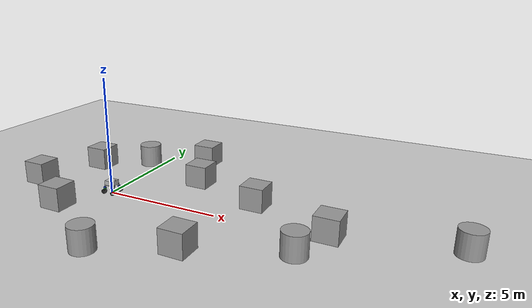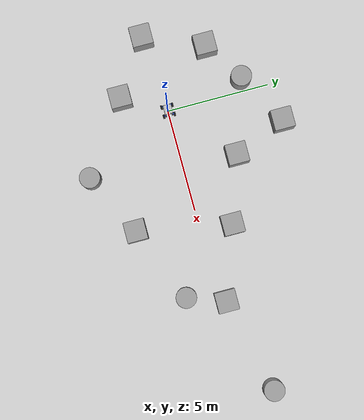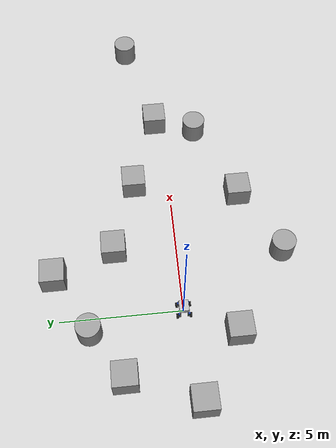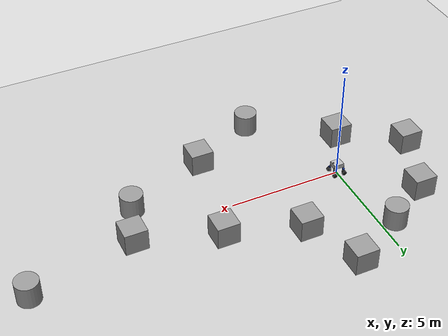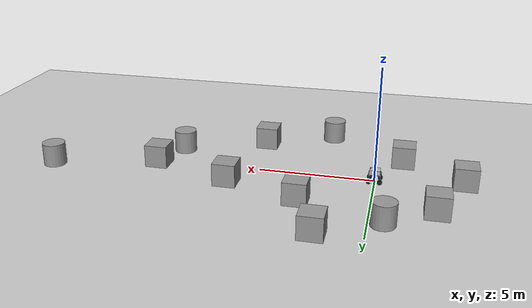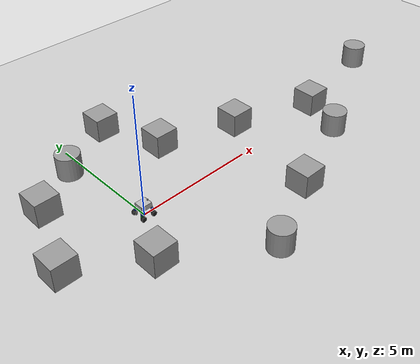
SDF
<sdf version="1.6">
 <world name="default">
  <light name="sun" type="directional">
   <pose>0 0 10 0 -0 0</pose>
   <diffuse>0.8 0.8 0.8 1</diffuse>
   <specular>0.2 0.2 0.2 1</specular>
   <attenuation>
    <range>1000</range>
    <constant>0.9</constant>
    <linear>0.01</linear>
    <quadratic>0.001</quadratic>
   </attenuation>
   <direction>-0.5 0.1 -0.9</direction>
  </light>
  <model name="ground_plane">
   <static>1</static>
   <link name="link">
    <collision name="collision">
     <geometry><plane><normal>0 0 1</normal><size>100 100</size></plane></geometry>
     <surface>
      <contact><collide_bitmask>65535</collide_bitmask></contact>
      <friction><ode><mu>100</mu><mu2>50</mu2></ode></friction>
     </surface>
    </collision>
    <visual name="visual">
     <cast_shadows>0</cast_shadows>
     <geometry><plane><normal>0 0 1</normal><size>100 100</size></plane></geometry>
     <material>
      <script><uri>file://media/materials/scripts/gazebo.material</uri><name>Gazebo/Grey</name></script>
     </material>
    </visual>
   </link>
  </model>
  <gravity>0 0 -9.8</gravity>
  <magnetic_field>6e-06 2.3e-05 -4.2e-05</magnetic_field>
  <atmosphere type="adiabatic"/>
  <physics name="default_physics" default="0" type="ode">
   <max_step_size>0.001</max_step_size>
   <real_time_factor>1</real_time_factor>
   <real_time_update_rate>1000</real_time_update_rate>
  </physics>
  <scene><ambient>0.4 0.4 0.4 1</ambient><background>0.7 0.7 0.7 1</background><shadows>1</shadows></scene>
  <audio><device>default</device></audio>
  <spherical_coordinates>
   <surface_model>EARTH_WGS84</surface_model>
   <latitude_deg>0</latitude_deg>
   <longitude_deg>0</longitude_deg>
   <elevation>0</elevation>
   <heading_deg>0</heading_deg>
  </spherical_coordinates>
  <model name="PF1">
   <link name="base_link">
    <inertial>
     <pose>0 -0 -0.108125 0 -0 0</pose>
     <mass>32</mass>
     <inertia>
      <ixx>14.1081</ixx>
      <ixy>0</ixy>
      <ixz>-2.77556e-17</ixz>
      <iyy>14.3162</iyy>
      <iyz>1.20043e-17</iyz>
      <izz>14.0615</izz>
     </inertia>
    </inertial>
    <collision name="base_link_collision"><geometry><box><size>0.45 0.39 0.2</size></box></geometry></collision>
    <collision name="base_link_fixed_joint_lump__frame1_bl_collision_1">
     <pose>-0.135 0.14 -0.1 0 -0 0</pose>
     <geometry><box><size>0.27 0.02 0.09</size></box></geometry>
    </collision>
    <collision name="base_link_fixed_joint_lump__frame2_bl_collision_2">
     <pose>-0.23 0.16 -0.145 0 -0 0</pose>
     <geometry><box><size>0.08 0.02 0.05</size></box></geometry>
    </collision>
    <collision name="base_link_fixed_joint_lump__gear_bl_collision_3">
     <pose>-0.23 0.195 -0.205 0 -0 0</pose>
     <geometry><box><size>0.075 0.09 0.07</size></box></geometry>
    </collision>
    <collision name="base_link_fixed_joint_lump__frame3_bl_collision_4">
     <pose>-0.23 0.195 -0.285 0 -0 0</pose>
     <geometry><box><size>0.075 0.09 0.09</size></box></geometry>
     <surface><friction><ode><mu>2500</mu><mu2>2500</mu2></ode></friction></surface>
    </collision>
    <collision name="base_link_fixed_joint_lump__motor_bl_collision_5">
     <pose>-0.23 0.175 -0.375 0 -0 0</pose>
     <geometry><box><size>0.075 0.09 0.09</size></box></geometry>
    </collision>
    <collision name="base_link_fixed_joint_lump__frame1_br_collision_6">
     <pose>-0.135 -0.14 -0.1 0 -0 0</pose>
     <geometry><box><size>0.27 0.02 0.09</size></box></geometry>
    </collision>
    <collision name="base_link_fixed_joint_lump__frame2_br_collision_7">
     <pose>-0.23 -0.16 -0.145 0 -0 0</pose>
     <geometry><box><size>0.08 0.02 0.05</size></box></geometry>
    </collision>
    <collision name="base_link_fixed_joint_lump__gear_br_collision_8">
     <pose>-0.23 -0.195 -0.205 0 -0 0</pose>
     <geometry><box><size>0.075 0.09 0.07</size></box></geometry>
    </collision>
    <collision name="base_link_fixed_joint_lump__frame3_br_collision_9">
     <pose>-0.23 -0.195 -0.285 0 -0 0</pose>
     <geometry><box><size>0.075 0.09 0.09</size></box></geometry>
     <surface><friction><ode><mu>2500</mu><mu2>2500</mu2></ode></friction></surface>
    </collision>
    <collision name="base_link_fixed_joint_lump__motor_br_collision_10">
     <pose>-0.23 -0.175 -0.375 0 -0 0</pose>
     <geometry><box><size>0.075 0.09 0.09</size></box></geometry>
    </collision>
    <collision name="base_link_fixed_joint_lump__frame1_fl_collision_11">
     <pose>0.135 0.14 -0.1 0 -0 0</pose>
     <geometry><box><size>0.27 0.02 0.09</size></box></geometry>
    </collision>
    <collision name="base_link_fixed_joint_lump__frame2_fl_collision_12">
     <pose>0.23 0.16 -0.145 0 -0 0</pose>
     <geometry><box><size>0.08 0.02 0.05</size></box></geometry>
    </collision>
    <collision name="base_link_fixed_joint_lump__gear_fl_collision_13">
     <pose>0.23 0.195 -0.205 0 -0 0</pose>
     <geometry><box><size>0.075 0.09 0.07</size></box></geometry>
    </collision>
    <collision name="base_link_fixed_joint_lump__frame3_fl_collision_14">
     <pose>0.23 0.195 -0.285 0 -0 0</pose>
     <geometry><box><size>0.075 0.09 0.09</size></box></geometry>
     <surface><friction><ode><mu>2500</mu><mu2>2500</mu2></ode></friction></surface>
    </collision>
    <collision name="base_link_fixed_joint_lump__motor_fl_collision_15">
     <pose>0.23 0.175 -0.375 0 -0 0</pose>
     <geometry><box><size>0.075 0.09 0.09</size></box></geometry>
    </collision>
    <collision name="base_link_fixed_joint_lump__frame1_fr_collision_16">
     <pose>0.135 -0.14 -0.1 0 -0 0</pose>
     <geometry><box><size>0.27 0.02 0.09</size></box></geometry>
    </collision>
    <collision name="base_link_fixed_joint_lump__frame2_fr_collision_17">
     <pose>0.23 -0.16 -0.145 0 -0 0</pose>
     <geometry><box><size>0.08 0.02 0.05</size></box></geometry>
    </collision>
    <collision name="base_link_fixed_joint_lump__gear_fr_collision_18">
     <pose>0.23 -0.195 -0.205 0 -0 0</pose>
     <geometry><box><size>0.075 0.09 0.07</size></box></geometry>
    </collision>
    <collision name="base_link_fixed_joint_lump__frame3_fr_collision_19">
     <pose>0.23 -0.195 -0.285 0 -0 0</pose>
     <geometry><box><size>0.075 0.09 0.09</size></box></geometry>
     <surface><friction><ode><mu>2500</mu><mu2>2500</mu2></ode></friction></surface>
    </collision>
    <collision name="base_link_fixed_joint_lump__motor_fr_collision_20">
     <pose>0.23 -0.175 -0.375 0 -0 0</pose>
     <geometry><box><size>0.075 0.09 0.09</size></box></geometry>
    </collision>
    <collision name="base_link_fixed_joint_lump__front_lidar_collision_21">
     <pose>0.19 0 0.125 0 -0 0</pose>
     <geometry><cylinder><length>0.05</length><radius>0.025</radius></cylinder></geometry>
    </collision>
    <collision name="base_link_fixed_joint_lump__imu_link_collision_22">
     <geometry><cylinder><length>0.01</length><radius>0.005</radius></cylinder></geometry>
    </collision>
    <visual name="base_link_visual"><geometry><box><size>0.45 0.39 0.2</size></box></geometry></visual>
    <visual name="base_link_fixed_joint_lump__frame1_bl_visual_1">
     <pose>-0.135 0.14 -0.1 0 -0 0</pose>
     <geometry><box><size>0.27 0.02 0.09</size></box></geometry>
     <material>
      <script><name>Gazebo/Grey</name><uri>file://media/materials/scripts/gazebo.material</uri></script>
     </material>
    </visual>
    <visual name="base_link_fixed_joint_lump__frame2_bl_visual_2">
     <pose>-0.23 0.16 -0.145 0 -0 0</pose>
     <geometry><box><size>0.08 0.02 0.05</size></box></geometry>
     <material>
      <script><name>Gazebo/Grey</name><uri>file://media/materials/scripts/gazebo.material</uri></script>
     </material>
    </visual>
    <visual name="base_link_fixed_joint_lump__gear_bl_visual_3">
     <pose>-0.23 0.195 -0.205 0 -0 0</pose>
     <geometry><box><size>0.075 0.09 0.07</size></box></geometry>
     <material>
      <script><name>Gazebo/Blue</name><uri>file://media/materials/scripts/gazebo.material</uri></script>
     </material>
    </visual>
    <visual name="base_link_fixed_joint_lump__frame3_bl_visual_4">
     <pose>-0.23 0.195 -0.285 0 -0 0</pose>
     <geometry><box><size>0.075 0.09 0.09</size></box></geometry>
     <material>
      <script><name>Gazebo/Grey</name><uri>file://media/materials/scripts/gazebo.material</uri></script>
     </material>
    </visual>
    <visual name="base_link_fixed_joint_lump__motor_bl_visual_5">
     <pose>-0.23 0.175 -0.375 0 -0 0</pose>
     <geometry><box><size>0.075 0.09 0.09</size></box></geometry>
     <material>
      <script><name>Gazebo/Grey</name><uri>file://media/materials/scripts/gazebo.material</uri></script>
     </material>
    </visual>
    <visual name="base_link_fixed_joint_lump__frame1_br_visual_6">
     <pose>-0.135 -0.14 -0.1 0 -0 0</pose>
     <geometry><box><size>0.27 0.02 0.09</size></box></geometry>
     <material>
      <script><name>Gazebo/Grey</name><uri>file://media/materials/scripts/gazebo.material</uri></script>
     </material>
    </visual>
    <visual name="base_link_fixed_joint_lump__frame2_br_visual_7">
     <pose>-0.23 -0.16 -0.145 0 -0 0</pose>
     <geometry><box><size>0.08 0.02 0.05</size></box></geometry>
     <material>
      <script><name>Gazebo/Grey</name><uri>file://media/materials/scripts/gazebo.material</uri></script>
     </material>
    </visual>
    <visual name="base_link_fixed_joint_lump__gear_br_visual_8">
     <pose>-0.23 -0.195 -0.205 0 -0 0</pose>
     <geometry><box><size>0.075 0.09 0.07</size></box></geometry>
     <material>
      <script><name>Gazebo/Blue</name><uri>file://media/materials/scripts/gazebo.material</uri></script>
     </material>
    </visual>
    <visual name="base_link_fixed_joint_lump__frame3_br_visual_9">
     <pose>-0.23 -0.195 -0.285 0 -0 0</pose>
     <geometry><box><size>0.075 0.09 0.09</size></box></geometry>
     <material>
      <script><name>Gazebo/Green</name><uri>file://media/materials/scripts/gazebo.material</uri></script>
     </material>
    </visual>
    <visual name="base_link_fixed_joint_lump__motor_br_visual_10">
     <pose>-0.23 -0.175 -0.375 0 -0 0</pose>
     <geometry><box><size>0.075 0.09 0.09</size></box></geometry>
     <material>
      <script><name>Gazebo/Grey</name><uri>file://media/materials/scripts/gazebo.material</uri></script>
     </material>
    </visual>
    <visual name="base_link_fixed_joint_lump__frame1_fl_visual_11">
     <pose>0.135 0.14 -0.1 0 -0 0</pose>
     <geometry><box><size>0.27 0.02 0.09</size></box></geometry>
     <material>
      <script><name>Gazebo/Grey</name><uri>file://media/materials/scripts/gazebo.material</uri></script>
     </material>
    </visual>
    <visual name="base_link_fixed_joint_lump__frame2_fl_visual_12">
     <pose>0.23 0.16 -0.145 0 -0 0</pose>
     <geometry><box><size>0.08 0.02 0.05</size></box></geometry>
     <material>
      <script><name>Gazebo/Grey</name><uri>file://media/materials/scripts/gazebo.material</uri></script>
     </material>
    </visual>
    <visual name="base_link_fixed_joint_lump__gear_fl_visual_13">
     <pose>0.23 0.195 -0.205 0 -0 0</pose>
     <geometry><box><size>0.075 0.09 0.07</size></box></geometry>
     <material>
      <script><name>Gazebo/Blue</name><uri>file://media/materials/scripts/gazebo.material</uri></script>
     </material>
    </visual>
    <visual name="base_link_fixed_joint_lump__frame3_fl_visual_14">
     <pose>0.23 0.195 -0.285 0 -0 0</pose>
     <geometry><box><size>0.075 0.09 0.09</size></box></geometry>
     <material>
      <script><name>Gazebo/Grey</name><uri>file://media/materials/scripts/gazebo.material</uri></script>
     </material>
    </visual>
    <visual name="base_link_fixed_joint_lump__motor_fl_visual_15">
     <pose>0.23 0.175 -0.375 0 -0 0</pose>
     <geometry><box><size>0.075 0.09 0.09</size></box></geometry>
     <material>
      <script><name>Gazebo/Grey</name><uri>file://media/materials/scripts/gazebo.material</uri></script>
     </material>
    </visual>
    <visual name="base_link_fixed_joint_lump__frame1_fr_visual_16">
     <pose>0.135 -0.14 -0.1 0 -0 0</pose>
     <geometry><box><size>0.27 0.02 0.09</size></box></geometry>
     <material>
      <script><name>Gazebo/Grey</name><uri>file://media/materials/scripts/gazebo.material</uri></script>
     </material>
    </visual>
    <visual name="base_link_fixed_joint_lump__frame2_fr_visual_17">
     <pose>0.23 -0.16 -0.145 0 -0 0</pose>
     <geometry><box><size>0.08 0.02 0.05</size></box></geometry>
     <material>
      <script><name>Gazebo/Grey</name><uri>file://media/materials/scripts/gazebo.material</uri></script>
     </material>
    </visual>
    <visual name="base_link_fixed_joint_lump__gear_fr_visual_18">
     <pose>0.23 -0.195 -0.205 0 -0 0</pose>
     <geometry><box><size>0.075 0.09 0.07</size></box></geometry>
     <material>
      <script><name>Gazebo/Blue</name><uri>file://media/materials/scripts/gazebo.material</uri></script>
     </material>
    </visual>
    <visual name="base_link_fixed_joint_lump__frame3_fr_visual_19">
     <pose>0.23 -0.195 -0.285 0 -0 0</pose>
     <geometry><box><size>0.075 0.09 0.09</size></box></geometry>
     <material>
      <script><name>Gazebo/Grey</name><uri>file://media/materials/scripts/gazebo.material</uri></script>
     </material>
    </visual>
    <visual name="base_link_fixed_joint_lump__motor_fr_visual_20">
     <pose>0.23 -0.175 -0.375 0 -0 0</pose>
     <geometry><box><size>0.075 0.09 0.09</size></box></geometry>
     <material>
      <script><name>Gazebo/Grey</name><uri>file://media/materials/scripts/gazebo.material</uri></script>
     </material>
    </visual>
    <visual name="base_link_fixed_joint_lump__front_lidar_visual_21">
     <pose>0.19 0 0.125 0 -0 0</pose>
     <geometry><cylinder><length>0.05</length><radius>0.025</radius></cylinder></geometry>
     <material>
      <script><name>Gazebo/Grey</name><uri>file://media/materials/scripts/gazebo.material</uri></script>
     </material>
    </visual>
    <visual name="base_link_fixed_joint_lump__imu_link_visual_22">
     <geometry><cylinder><length>0.01</length><radius>0.005</radius></cylinder></geometry>
     <material>
      <script><name>Gazebo/Blue</name><uri>file://media/materials/scripts/gazebo.material</uri></script>
     </material>
    </visual>
    <sensor name="front_lidar" type="ray">
     <visualize>1</visualize>
     <update_rate>10</update_rate>
     <ray>
      <scan>
       <horizontal>
        <samples>400</samples>
        <resolution>1</resolution>
        <min_angle>-3.14159</min_angle>
        <max_angle>3.14159</max_angle>
       </horizontal>
       <vertical><samples>1</samples><min_angle>0</min_angle><max_angle>0</max_angle></vertical>
      </scan>
      <range><min>0.1</min><max>20</max><resolution>0.01</resolution></range>
      <noise><type>gaussian</type><mean>0</mean><stddev>0.01</stddev></noise>
     </ray>
     <plugin name="gazebo_ros_lidar_controller" filename="libgazebo_ros_laser.so">
      <topicName>scan</topicName>
      <frameName>front_lidar</frameName>
      <robotNamespace>/</robotNamespace>
     </plugin>
     <pose>0.19 0 0.125 0 -0 0</pose>
    </sensor>
    <sensor name="imu_sensor" type="imu">
     <always_on>1</always_on>
     <update_rate>100</update_rate>
     <visualize>1</visualize>
     <topic>data</topic>
     <plugin name="imu_plugin" filename="libgazebo_ros_imu_sensor.so">
      <topicName>imu/data</topicName>
      <bodyName>imu_link</bodyName>
      <updateRateHZ>10.0</updateRateHZ>
      <gaussianNoise>0.0</gaussianNoise>
      <xyzOffset>0 0 0</xyzOffset>
      <rpyOffset>0 0 0</rpyOffset>
      <frameName>imu_link</frameName>
      <robotNamespace>/</robotNamespace>
     </plugin>
    </sensor>
   </link>
   <link name="wheel_bl">
    <pose>-0.23 0.265 -0.375 0 -0 0</pose>
    <inertial>
     <mass>1</mass>
     <inertia><ixx>1</ixx><ixy>0</ixy><ixz>0</ixz><iyy>1</iyy><iyz>0</iyz><izz>1</izz></inertia>
    </inertial>
    <collision name="wheel_bl_collision">
     <pose>0 0 0 1.57 -0 0</pose>
     <geometry><cylinder><length>0.09</length><radius>0.1</radius></cylinder></geometry>
     <surface>
      <contact><ode><kp>1e+07</kp><kd>1</kd></ode></contact>
      <friction><ode><mu>200</mu><mu2>100</mu2></ode></friction>
     </surface>
    </collision>
    <visual name="wheel_bl_visual">
     <pose>0 0 0 1.57 -0 0</pose>
     <geometry><cylinder><length>0.09</length><radius>0.1</radius></cylinder></geometry>
     <material>
      <script><name>Gazebo/Black</name><uri>file://media/materials/scripts/gazebo.material</uri></script>
     </material>
    </visual>
   </link>
   <joint name="wheel_bl_to_motor_bl" type="revolute">
    <child>wheel_bl</child>
    <parent>base_link</parent>
    <axis>
     <xyz>0 1 0</xyz>
     <limit><lower>-1e+16</lower><upper>1e+16</upper></limit>
     <dynamics>
      <damping>0.1</damping>
      <friction>0</friction>
      <spring_reference>0</spring_reference>
      <spring_stiffness>0</spring_stiffness>
     </dynamics>
     <use_parent_model_frame>1</use_parent_model_frame>
    </axis>
   </joint>
   <link name="wheel_br">
    <pose>-0.23 -0.265 -0.375 0 -0 0</pose>
    <inertial>
     <mass>1</mass>
     <inertia><ixx>1</ixx><ixy>0</ixy><ixz>0</ixz><iyy>1</iyy><iyz>0</iyz><izz>1</izz></inertia>
    </inertial>
    <collision name="wheel_br_collision">
     <pose>0 0 0 1.57 -0 0</pose>
     <geometry><cylinder><length>0.09</length><radius>0.1</radius></cylinder></geometry>
     <surface>
      <contact><ode><kp>1e+07</kp><kd>1</kd></ode></contact>
      <friction><ode><mu>200</mu><mu2>100</mu2></ode></friction>
     </surface>
    </collision>
    <visual name="wheel_br_visual">
     <pose>0 0 0 1.57 -0 0</pose>
     <geometry><cylinder><length>0.09</length><radius>0.1</radius></cylinder></geometry>
     <material>
      <script><name>Gazebo/Black</name><uri>file://media/materials/scripts/gazebo.material</uri></script>
     </material>
    </visual>
   </link>
   <joint name="wheel_br_to_motor_br" type="revolute">
    <child>wheel_br</child>
    <parent>base_link</parent>
    <axis>
     <xyz>0 1 0</xyz>
     <limit><lower>-1e+16</lower><upper>1e+16</upper></limit>
     <dynamics>
      <damping>0.1</damping>
      <friction>0</friction>
      <spring_reference>0</spring_reference>
      <spring_stiffness>0</spring_stiffness>
     </dynamics>
     <use_parent_model_frame>1</use_parent_model_frame>
    </axis>
   </joint>
   <link name="wheel_fl">
    <pose>0.23 0.265 -0.375 0 -0 0</pose>
    <inertial>
     <mass>1</mass>
     <inertia><ixx>1</ixx><ixy>0</ixy><ixz>0</ixz><iyy>1</iyy><iyz>0</iyz><izz>1</izz></inertia>
    </inertial>
    <collision name="wheel_fl_collision">
     <pose>0 0 0 1.57 -0 0</pose>
     <geometry><cylinder><length>0.09</length><radius>0.1</radius></cylinder></geometry>
     <surface>
      <contact><ode><kp>1e+07</kp><kd>1</kd></ode></contact>
      <friction><ode><mu>200</mu><mu2>100</mu2></ode></friction>
     </surface>
    </collision>
    <visual name="wheel_fl_visual">
     <pose>0 0 0 1.57 -0 0</pose>
     <geometry><cylinder><length>0.09</length><radius>0.1</radius></cylinder></geometry>
     <material>
      <script><name>Gazebo/Black</name><uri>file://media/materials/scripts/gazebo.material</uri></script>
     </material>
    </visual>
   </link>
   <joint name="wheel_fl_to_motor_fl" type="revolute">
    <child>wheel_fl</child>
    <parent>base_link</parent>
    <axis>
     <xyz>0 1 0</xyz>
     <limit><lower>-1e+16</lower><upper>1e+16</upper></limit>
     <dynamics>
      <damping>0.1</damping>
      <friction>0</friction>
      <spring_reference>0</spring_reference>
      <spring_stiffness>0</spring_stiffness>
     </dynamics>
     <use_parent_model_frame>1</use_parent_model_frame>
    </axis>
   </joint>
   <link name="wheel_fr">
    <pose>0.23 -0.265 -0.375 0 -0 0</pose>
    <inertial>
     <mass>1</mass>
     <inertia><ixx>1</ixx><ixy>0</ixy><ixz>0</ixz><iyy>1</iyy><iyz>0</iyz><izz>1</izz></inertia>
    </inertial>
    <collision name="wheel_fr_collision">
     <pose>0 0 0 1.57 -0 0</pose>
     <geometry><cylinder><length>0.09</length><radius>0.1</radius></cylinder></geometry>
     <surface>
      <contact><ode><kp>1e+07</kp><kd>1</kd></ode></contact>
      <friction><ode><mu>200</mu><mu2>100</mu2></ode></friction>
     </surface>
    </collision>
    <visual name="wheel_fr_visual">
     <pose>0 0 0 1.57 -0 0</pose>
     <geometry><cylinder><length>0.09</length><radius>0.1</radius></cylinder></geometry>
     <material>
      <script><name>Gazebo/Black</name><uri>file://media/materials/scripts/gazebo.material</uri></script>
     </material>
    </visual>
   </link>
   <joint name="wheel_fr_to_motor_fr" type="revolute">
    <child>wheel_fr</child>
    <parent>base_link</parent>
    <axis>
     <xyz>0 1 0</xyz>
     <limit><lower>-1e+16</lower><upper>1e+16</upper></limit>
     <dynamics>
      <damping>0.1</damping>
      <friction>0</friction>
      <spring_reference>0</spring_reference>
      <spring_stiffness>0</spring_stiffness>
     </dynamics>
     <use_parent_model_frame>1</use_parent_model_frame>
    </axis>
   </joint>
   <static>0</static>
   <plugin name="gazebo_ros_control" filename="libgazebo_ros_control.so">
    <robotNamespace>/</robotNamespace>
    <robotSimType>gazebo_ros_control/DefaultRobotHWSim</robotSimType>
    <legacyModeNS>1</legacyModeNS>
   </plugin>
   <pose>-7e-06 -2.8e-05 0.475027 7e-06 0 -1e-06</pose>
  </model>
  <model name="unit_box">
   <pose>2.93086 2.62844 0.499995 -1e-05 -0 -0</pose>
   <link name="link">
    <inertial>
     <mass>1</mass>
     <inertia>
      <ixx>0.166667</ixx>
      <ixy>0</ixy>
      <ixz>0</ixz>
      <iyy>0.166667</iyy>
      <iyz>0</iyz>
      <izz>0.166667</izz>
     </inertia>
    </inertial>
    <collision name="collision"><geometry><box><size>1 1 1</size></box></geometry></collision>
    <visual name="visual">
     <geometry><box><size>1 1 1</size></box></geometry>
     <material>
      <script><name>Gazebo/Grey</name><uri>file://media/materials/scripts/gazebo.material</uri></script>
     </material>
    </visual>
   </link>
  </model>
  <model name="unit_box_0">
   <pose>-2.5611 2.50797 0.499995 0 1e-05 0</pose>
   <link name="link">
    <inertial>
     <mass>1</mass>
     <inertia>
      <ixx>0.166667</ixx>
      <ixy>0</ixy>
      <ixz>0</ixz>
      <iyy>0.166667</iyy>
      <iyz>0</iyz>
      <izz>0.166667</izz>
     </inertia>
    </inertial>
    <collision name="collision"><geometry><box><size>1 1 1</size></box></geometry></collision>
    <visual name="visual">
     <geometry><box><size>1 1 1</size></box></geometry>
     <material>
      <script><name>Gazebo/Grey</name><uri>file://media/materials/scripts/gazebo.material</uri></script>
     </material>
    </visual>
   </link>
  </model>
  <model name="unit_box_1">
   <pose>5.25281 -2.97575 0.499995 -1e-05 -0 -0</pose>
   <link name="link">
    <inertial>
     <mass>1</mass>
     <inertia>
      <ixx>0.166667</ixx>
      <ixy>0</ixy>
      <ixz>0</ixz>
      <iyy>0.166667</iyy>
      <iyz>0</iyz>
      <izz>0.166667</izz>
     </inertia>
    </inertial>
    <collision name="collision"><geometry><box><size>1 1 1</size></box></geometry></collision>
    <visual name="visual">
     <geometry><box><size>1 1 1</size></box></geometry>
     <material>
      <script><name>Gazebo/Grey</name><uri>file://media/materials/scripts/gazebo.material</uri></script>
     </material>
    </visual>
   </link>
  </model>
  <model name="unit_box_2">
   <pose>-1.12146 -2.07648 0.499995 0 1e-05 0</pose>
   <link name="link">
    <inertial>
     <mass>1</mass>
     <inertia>
      <ixx>0.166667</ixx>
      <ixy>0</ixy>
      <ixz>0</ixz>
      <iyy>0.166667</iyy>
      <iyz>0</iyz>
      <izz>0.166667</izz>
     </inertia>
    </inertial>
    <collision name="collision"><geometry><box><size>1 1 1</size></box></geometry></collision>
    <visual name="visual">
     <geometry><box><size>1 1 1</size></box></geometry>
     <material>
      <script><name>Gazebo/Grey</name><uri>file://media/materials/scripts/gazebo.material</uri></script>
     </material>
    </visual>
   </link>
  </model>
  <model name="unit_box_3">
   <pose>6.11297 1.55513 0.499995 -1e-05 -0 -0</pose>
   <link name="link">
    <inertial>
     <mass>1</mass>
     <inertia>
      <ixx>0.166667</ixx>
      <ixy>0</ixy>
      <ixz>0</ixz>
      <iyy>0.166667</iyy>
      <iyz>0</iyz>
      <izz>0.166667</izz>
     </inertia>
    </inertial>
    <collision name="collision"><geometry><box><size>1 1 1</size></box></geometry></collision>
    <visual name="visual">
     <geometry><box><size>1 1 1</size></box></geometry>
     <material>
      <script><name>Gazebo/Grey</name><uri>file://media/materials/scripts/gazebo.material</uri></script>
     </material>
    </visual>
   </link>
  </model>
  <model name="unit_box_4">
   <pose>1.88792 5.15979 0.499995 0 1e-05 0</pose>
   <link name="link">
    <inertial>
     <mass>1</mass>
     <inertia>
      <ixx>0.166667</ixx>
      <ixy>0</ixy>
      <ixz>0</ixz>
      <iyy>0.166667</iyy>
      <iyz>0</iyz>
      <izz>0.166667</izz>
     </inertia>
    </inertial>
    <collision name="collision"><geometry><box><size>1 1 1</size></box></geometry></collision>
    <visual name="visual">
     <geometry><box><size>1 1 1</size></box></geometry>
     <material>
      <script><name>Gazebo/Grey</name><uri>file://media/materials/scripts/gazebo.material</uri></script>
     </material>
    </visual>
   </link>
  </model>
  <model name="unit_box_5">
   <pose>-3.71494 -0.343698 0.499995 -1e-05 -0 -0</pose>
   <link name="link">
    <inertial>
     <mass>1</mass>
     <inertia>
      <ixx>0.166667</ixx>
      <ixy>0</ixy>
      <ixz>0</ixz>
      <iyy>0.166667</iyy>
      <iyz>0</iyz>
      <izz>0.166667</izz>
     </inertia>
    </inertial>
    <collision name="collision"><geometry><box><size>1 1 1</size></box></geometry></collision>
    <visual name="visual">
     <geometry><box><size>1 1 1</size></box></geometry>
     <material>
      <script><name>Gazebo/Grey</name><uri>file://media/materials/scripts/gazebo.material</uri></script>
     </material>
    </visual>
   </link>
  </model>
  <model name="unit_cylinder">
   <pose>2.27226 -4.43054 0.499992 -3e-06 -4e-06 -0</pose>
   <link name="link">
    <inertial>
     <mass>1</mass>
     <inertia><ixx>0.145833</ixx><ixy>0</ixy><ixz>0</ixz><iyy>0.145833</iyy><iyz>0</iyz><izz>0.125</izz></inertia>
    </inertial>
    <collision name="collision">
     <geometry><cylinder><radius>0.5</radius><length>1</length></cylinder></geometry>
    </collision>
    <visual name="visual">
     <geometry><cylinder><radius>0.5</radius><length>1</length></cylinder></geometry>
     <material>
      <script><name>Gazebo/Grey</name><uri>file://media/materials/scripts/gazebo.material</uri></script>
     </material>
    </visual>
   </link>
  </model>
  <model name="unit_cylinder_0">
   <pose>-0.59121 3.78411 0.499993 -3e-06 -3e-06 0</pose>
   <link name="link">
    <inertial>
     <mass>1</mass>
     <inertia><ixx>0.145833</ixx><ixy>0</ixy><ixz>0</ixz><iyy>0.145833</iyy><iyz>0</iyz><izz>0.125</izz></inertia>
    </inertial>
    <collision name="collision">
     <geometry><cylinder><radius>0.5</radius><length>1</length></cylinder></geometry>
    </collision>
    <visual name="visual">
     <geometry><cylinder><radius>0.5</radius><length>1</length></cylinder></geometry>
     <material>
      <script><name>Gazebo/Grey</name><uri>file://media/materials/scripts/gazebo.material</uri></script>
     </material>
    </visual>
   </link>
  </model>
  <model name="unit_cylinder_1">
   <pose>8.92764 -1.46982 0.499997 3e-06 4e-06 -0</pose>
   <link name="link">
    <inertial>
     <mass>1</mass>
     <inertia><ixx>0.145833</ixx><ixy>0</ixy><ixz>0</ixz><iyy>0.145833</iyy><iyz>0</iyz><izz>0.125</izz></inertia>
    </inertial>
    <collision name="collision">
     <geometry><cylinder><radius>0.5</radius><length>1</length></cylinder></geometry>
    </collision>
    <visual name="visual">
     <geometry><cylinder><radius>0.5</radius><length>1</length></cylinder></geometry>
     <material>
      <script><name>Gazebo/Grey</name><uri>file://media/materials/scripts/gazebo.material</uri></script>
     </material>
    </visual>
   </link>
  </model>
  <model name="unit_cylinder_2">
   <pose>14.1764 1.40087 0.499993 -3e-06 -4e-06 -0</pose>
   <link name="link">
    <inertial>
     <mass>1</mass>
     <inertia><ixx>0.145833</ixx><ixy>0</ixy><ixz>0</ixz><iyy>0.145833</iyy><iyz>0</iyz><izz>0.125</izz></inertia>
    </inertial>
    <collision name="collision">
     <geometry><cylinder><radius>0.5</radius><length>1</length></cylinder></geometry>
    </collision>
    <visual name="visual">
     <geometry><cylinder><radius>0.5</radius><length>1</length></cylinder></geometry>
     <material>
      <script><name>Gazebo/Grey</name><uri>file://media/materials/scripts/gazebo.material</uri></script>
     </material>
    </visual>
   </link>
  </model>
  <model name="unit_box_6">
   <pose>9.57171 0.330857 0.5 0 -0 0</pose>
   <link name="link">
    <inertial>
     <mass>1</mass>
     <inertia>
      <ixx>0.166667</ixx>
      <ixy>0</ixy>
      <ixz>0</ixz>
      <iyy>0.166667</iyy>
      <iyz>0</iyz>
      <izz>0.166667</izz>
     </inertia>
    </inertial>
    <collision name="collision"><geometry><box><size>1 1 1</size></box></geometry></collision>
    <visual name="visual">
     <geometry><box><size>1 1 1</size></box></geometry>
     <material>
      <script><name>Gazebo/Grey</name><uri>file://media/materials/scripts/gazebo.material</uri></script>
     </material>
    </visual>
   </link>
  </model>
 </world>
</sdf>
